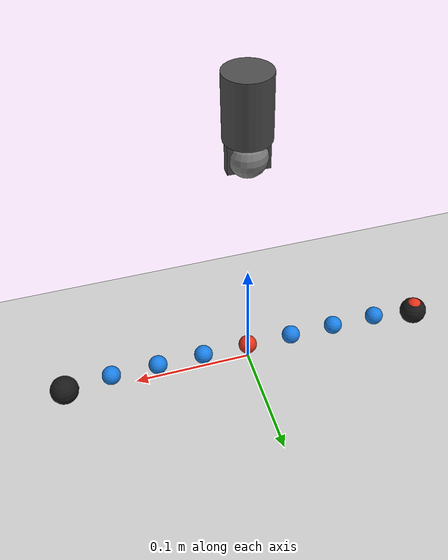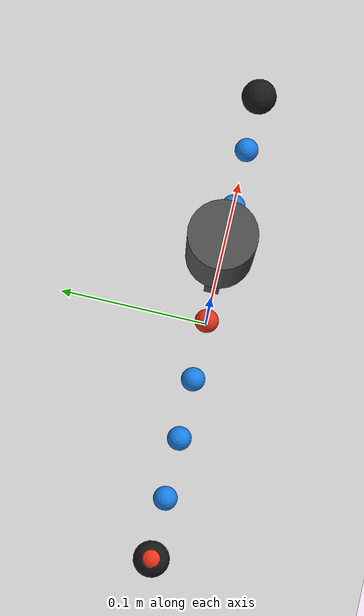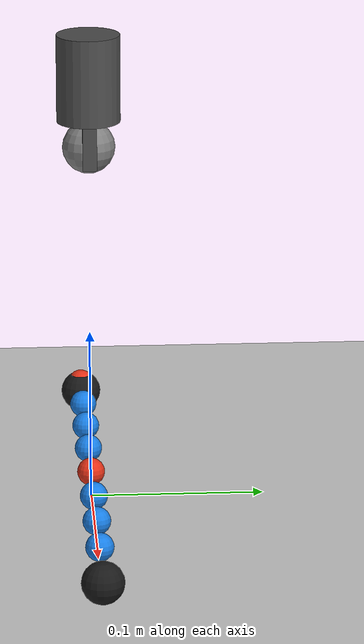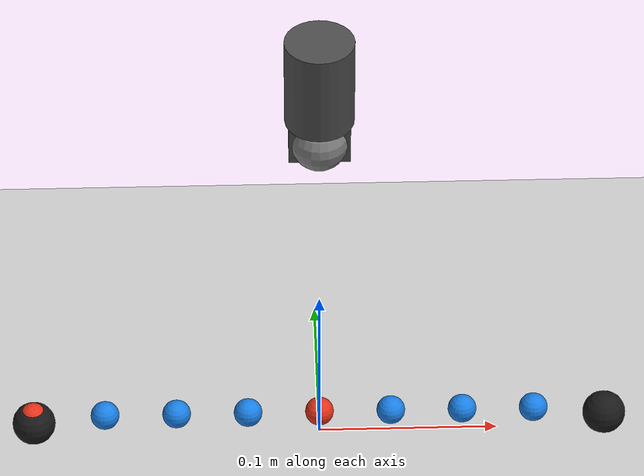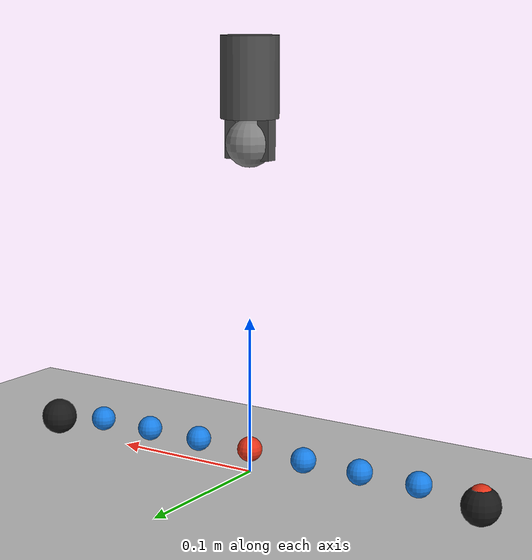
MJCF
<mujoco model="ur5_cable_routing">
  <option timestep="0.002" gravity="0 0 -9.81" integrator="implicit"
         solver="CG" iterations="10" tolerance="1e-8">
    <flag contact="enable"/>
  </option>
  <default>
    <geom condim="4" friction="0.8 0.01 0.001"/>
  </default>
  <asset>
    <texture name="texplane" type="2d" builtin="checker" width="512" height="512"
             rgb1="0.85 0.85 0.85" rgb2="0.75 0.75 0.75"/>
    <material name="matplane" texture="texplane" texrepeat="8 8" reflectance="0.1"/>
    <material name="cable" rgba="0.1 0.5 0.9 1"/>
    <material name="gripper_mat" rgba="0.3 0.3 0.3 1"/>
    <material name="bead" rgba="0.9 0.2 0.1 1"/>
    <material name="pin" rgba="0.1 0.1 0.1 1"/>
  </asset>
  <worldbody>
    <geom name="floor" type="plane" size="0.5 0.5 0.01" pos="0 0 -0.005"
          material="matplane"/>
    <!-- gripper (free body) -->
    <body name="gripper" pos="0 0 0.25">
      <freejoint name="gripper_joint"/>
      <geom name="gripper_body" type="cylinder" size="0.018 0.025"
            material="gripper_mat"/>
      <geom name="lf" type="box" size="0.004 0.004 0.015" pos="-0.012 0 -0.035"
            material="gripper_mat"/>
      <geom name="rf" type="box" size="0.004 0.004 0.015" pos="0.012 0 -0.035"
            material="gripper_mat"/>
      <site name="grip_site" pos="0 0 -0.04" size="0.015"/>
    </body>

    <body name="pin_L" pos="-0.1600 0 0.01">
      <freejoint name="pin_L_j"/>
      <geom type="sphere" size="0.012" material="pin"/>
    </body>
    <body name="bead_0" pos="-0.1600 0 0.015">
      <freejoint name="bead_j_0"/>
      <geom name="bead_g_0" type="sphere" size="0.008" material="bead"/>
    </body>
    <body name="bead_1" pos="-0.1200 0 0.015">
      <freejoint name="bead_j_1"/>
      <geom name="bead_g_1" type="sphere" size="0.008" material="cable"/>
    </body>
    <body name="bead_2" pos="-0.0800 0 0.015">
      <freejoint name="bead_j_2"/>
      <geom name="bead_g_2" type="sphere" size="0.008" material="cable"/>
    </body>
    <body name="bead_3" pos="-0.0400 0 0.015">
      <freejoint name="bead_j_3"/>
      <geom name="bead_g_3" type="sphere" size="0.008" material="cable"/>
    </body>
    <body name="bead_4" pos="0.0000 0 0.015">
      <freejoint name="bead_j_4"/>
      <geom name="bead_g_4" type="sphere" size="0.008" material="bead"/>
    </body>
    <body name="bead_5" pos="0.0400 0 0.015">
      <freejoint name="bead_j_5"/>
      <geom name="bead_g_5" type="sphere" size="0.008" material="cable"/>
    </body>
    <body name="bead_6" pos="0.0800 0 0.015">
      <freejoint name="bead_j_6"/>
      <geom name="bead_g_6" type="sphere" size="0.008" material="cable"/>
    </body>
    <body name="bead_7" pos="0.1200 0 0.015">
      <freejoint name="bead_j_7"/>
      <geom name="bead_g_7" type="sphere" size="0.008" material="cable"/>
    </body>
    <body name="pin_R" pos="0.1600 0 0.01">
      <freejoint name="pin_R_j"/>
      <geom type="sphere" size="0.012" material="pin"/>
    </body>
  </worldbody>
  <tendon>
    <spatial name="seg_0" limited="true" range="0 0.0600" width="0.003">
      <site site="grip_site" body="bead_0"/>
    </spatial>
    <spatial name="seg_1" limited="true" range="0 0.0600" width="0.003">
      <site site="grip_site" body="bead_1"/>
    </spatial>
    <spatial name="seg_2" limited="true" range="0 0.0600" width="0.003">
      <site site="grip_site" body="bead_2"/>
    </spatial>
    <spatial name="seg_3" limited="true" range="0 0.0600" width="0.003">
      <site site="grip_site" body="bead_3"/>
    </spatial>
    <spatial name="seg_4" limited="true" range="0 0.0600" width="0.003">
      <site site="grip_site" body="bead_4"/>
    </spatial>
    <spatial name="seg_5" limited="true" range="0 0.0600" width="0.003">
      <site site="grip_site" body="bead_5"/>
    </spatial>
    <spatial name="seg_6" limited="true" range="0 0.0600" width="0.003">
      <site site="grip_site" body="bead_6"/>
    </spatial>
  </tendon>
</mujoco>
